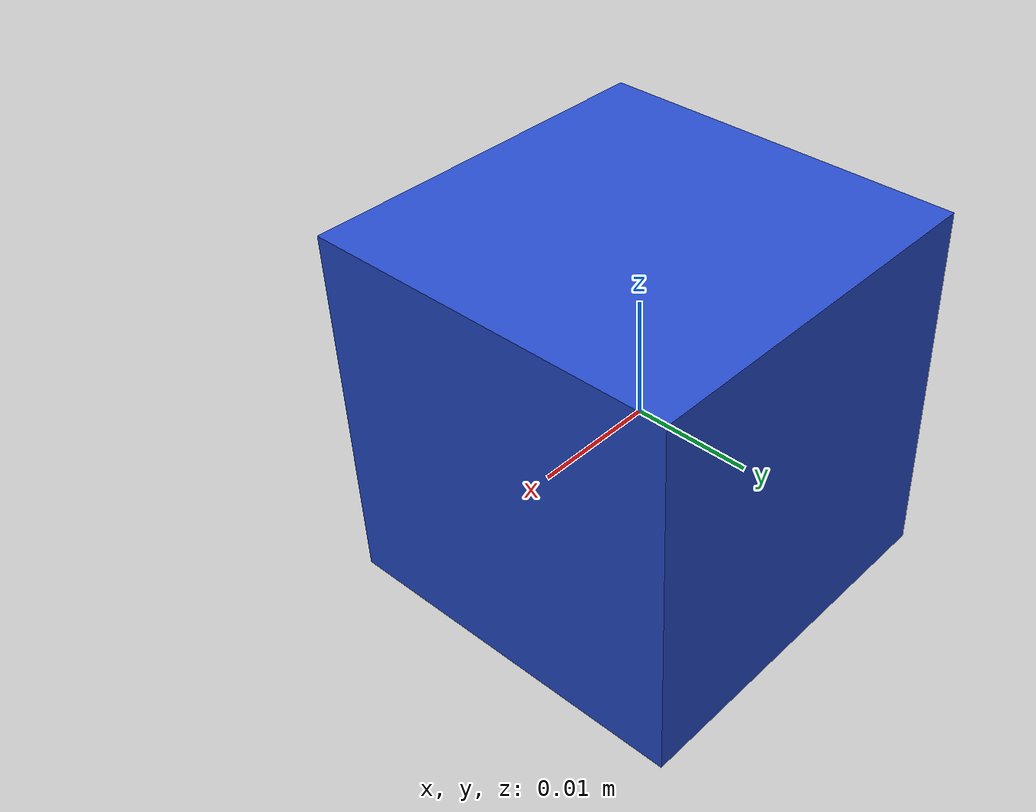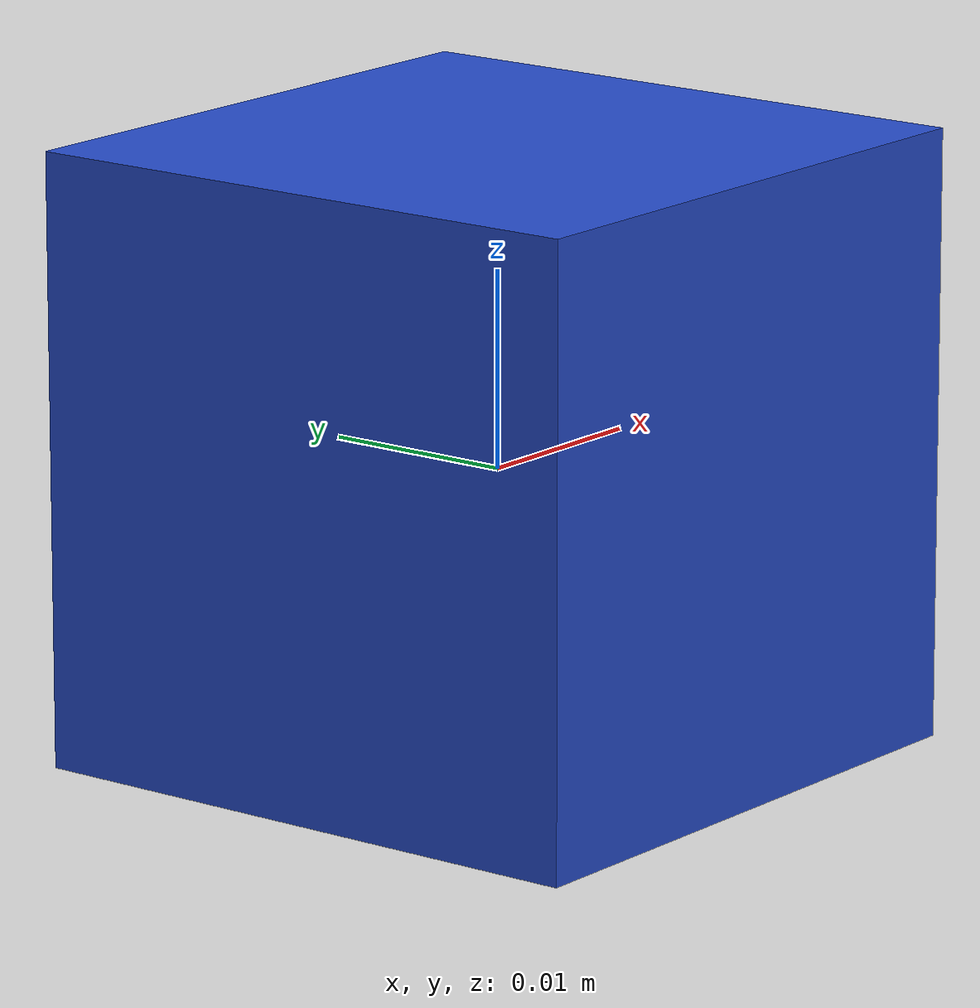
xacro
<?xml version="1.0"?>
<robot xmlns:xacro="http://wiki.ros.org/xacro" name="ur">

  <link name="base_link_lego">
  </link>

  <joint name="object_base_joint" type="fixed">
    <parent link="base_link_lego"/>
    <child link="legostein_link"/>
    <axis xyz="1 1 1" />
    <dynamics damping="0.5" friction="0.5"/>
    <origin xyz="0.0 0.0 0.001" rpy="0 0 0"/>
  </joint>

  <link name="legostein_link">
    <collision>
      <origin xyz="0 0 0" rpy="0 0 0"/>
      <geometry>
        <box size="0.031 0.031 0.031"/>
      </geometry>
      <mu value="0.5"/>
    </collision>

    <visual>
      <origin xyz="0 0 0" rpy="0 0 0"/>
      <geometry>
        <box size="0.031 0.031 0.031"/>
      </geometry>
    </visual>

    <inertial>
      <origin xyz="0 0 0" rpy="0 0 0"/>
      <mass value="0.01"/>
      <inertia
        ixx="0.001" ixy="0.0" ixz="0.0"
        iyy="0.001" iyz="0.0"
        izz="0.001"/>
    </inertial>
    <self_collide>1</self_collide>
  </link>

  <gazebo reference="legostein_link">
    <material>Gazebo/Blue</material>
  </gazebo>

</robot>
